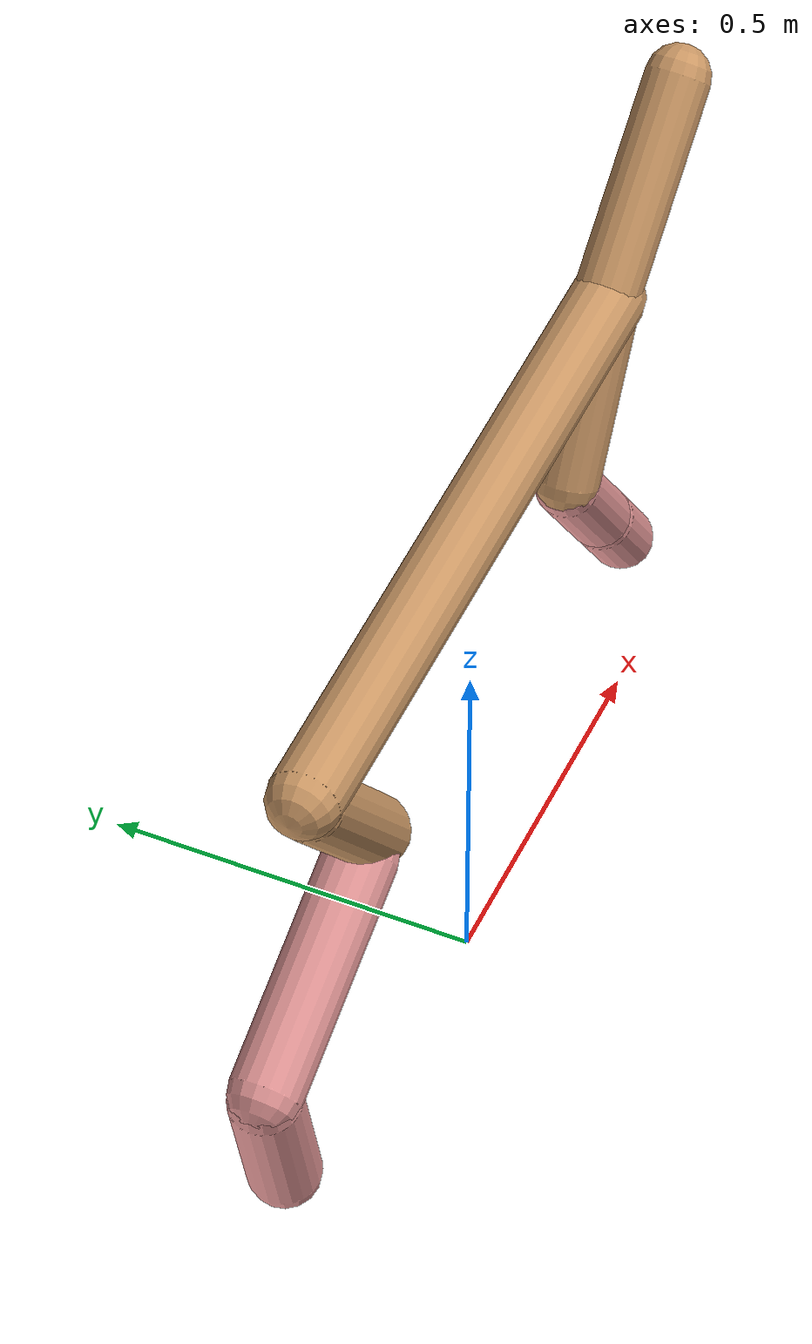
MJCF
<mujoco model="cheetah">
  <compiler angle="radian" coordinate="local" inertiafromgeom="true" settotalmass="14" />
  <default>
    <joint armature=".1" damping=".01" limited="true" solimplimit="0 .8 .03" solreflimit=".02 1" stiffness="8" />
    <geom conaffinity="0" condim="3" contype="1" friction="0.8 .1 .1" rgba="0.8 0.6 .4 1" solimp="0.0 0.8 0.01" solref="0.02 1" />
    <motor ctrllimited="true" ctrlrange="-1 1" />
  </default>
  <size nstack="300000" nuser_geom="1" />
  <option gravity="0 0 -9.81" timestep="0.01" />
  <worldbody>
    <body name="torso" pos="0.0 0.0 0.7860903211801146">
      <joint armature="0" axis="1 0 0" damping="0" limited="false" name="ignorex" pos="0 0 0" stiffness="0" type="slide" />
      <joint armature="0" axis="0 0 1" damping="0" limited="false" name="ignorez" pos="0 0 0" stiffness="0" type="slide" />
      <joint armature="0" axis="0 1 0" damping="0" limited="false" name="ignorey" pos="0 0 0" stiffness="0" type="hinge" />
      <geom fromto="-0.5 0.0 0.0 0.4292096037286498 0.0 0.0" name="torso" size="0.0483003784951761" type="capsule" />
      <geom axisangle="0 1 0 .87" name="head" pos="0.5292096037286498 0.0 0.1" size="0.043060780645592746 0.15" type="capsule" />

      <body name="bthigh" pos="-.5 0 0">
        <joint axis="0 1 0" damping="6" name="bthigh" pos="0 0 0" range="-.52 1.05" stiffness="240" type="hinge" />
        <geom axisangle="0 1 0 -3.8" name="bthigh" pos="0.10645006636282688 0.0 -0.13838508627167492" size="0.04792390503706918 0.15557889539925135" type="capsule" />
        <body name="bshin" pos="0.17290013272565374 0.0 -0.26677017254334984">
          <joint axis="0 1 0" damping="4.5" name="bshin" pos="0 0 0" range="-.785 .785" stiffness="180" type="hinge" />
          <geom axisangle="0 1 0 -2.03" name="bshin" pos="-0.1497883293405183 0.0 -0.07489416467025915" rgba="0.9 0.6 0.6 1" size="0.04792390503706918 0.16094368489577726" type="capsule" />
          <body name="bfoot" pos="-0.2995766586810366 0.0 -0.1497883293405183">
            <joint axis="0 1 0" damping="3" name="bfoot" pos="0 0 0" range="-.4 .785" stiffness="120" type="hinge" />
            <geom axisangle="0 1 0 -.27" name="bfoot" pos="0.032026343927511754 0.0 -0.10355184536562133" rgba="0.9 0.6 0.6 1" size="0.04792390503706918 0.1008580425346871" type="capsule" />
            <inertial mass="10" />
          </body>
        </body>
      </body>
      <body name="fthigh" pos="0.4292096037286498 0.0 0.0">
        <joint axis="0 1 0" damping="4.5" name="fthigh" pos="0 0 0" range="-1.5 0.8" stiffness="180" type="hinge" />
        <geom axisangle="0 1 0 .52" name="fthigh" pos="-0.06423745330795398 0.0 -0.1101213485279211" size="0.042287623960096644 0.12156344897773734" type="capsule" />
        <body name="fshin" pos="-0.12847490661590796 0.0 -0.2202426970558422">
          <joint axis="0 1 0" damping="3" name="fshin" pos="0 0 0" range="-1.2 1.1" stiffness="120" type="hinge" />
          <geom axisangle="0 1 0 -.6" name="fshin" pos="0.05966334424991018 0.0 -0.08261078434602948" rgba="0.9 0.6 0.6 1" size="0.042287623960096644 0.09688515482436208" type="capsule" />
          <body name="ffoot" pos="0.11932668849982037 0.0 -0.16522156869205895">
            <joint axis="0 1 0" damping="1.5" name="ffoot" pos="0 0 0" range="-3.1 -0.3" stiffness="60" type="hinge" />
            <geom axisangle="0 1 0 -.6" name="ffoot" pos="0.04174505169277227 0.0 -0.06493674707764575" rgba="0.9 0.6 0.6 1" size="0.042287623960096644 0.06398076261986176" type="capsule" />
            <inertial mass="10" />
          </body>
        </body>
      </body>
    </body>
  </worldbody>
  <actuator>
    <motor gear="120" joint="bthigh" name="bthigh" />
    <motor gear="90" joint="bshin" name="bshin" />
    <motor gear="60" joint="bfoot" name="bfoot" />
    <motor gear="120" joint="fthigh" name="fthigh" />
    <motor gear="60" joint="fshin" name="fshin" />
    <motor gear="30" joint="ffoot" name="ffoot" />
  </actuator>
</mujoco>
